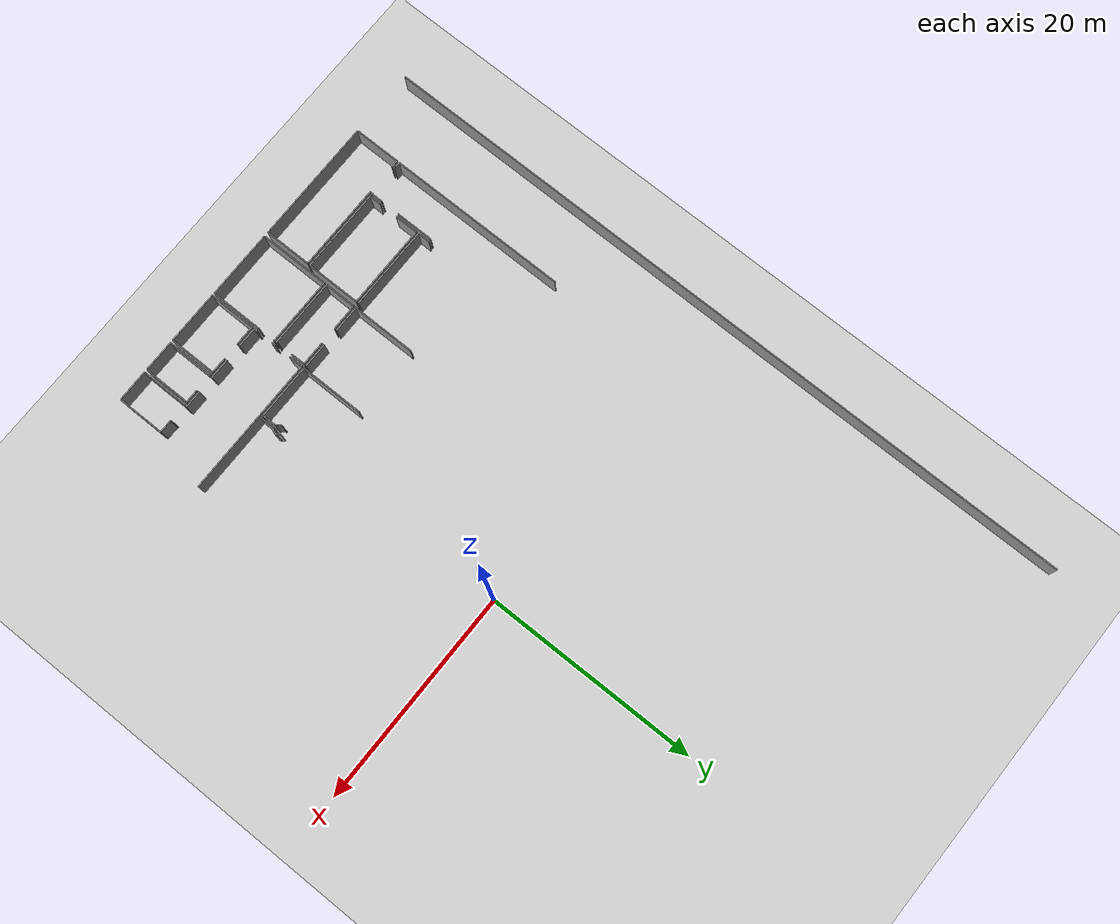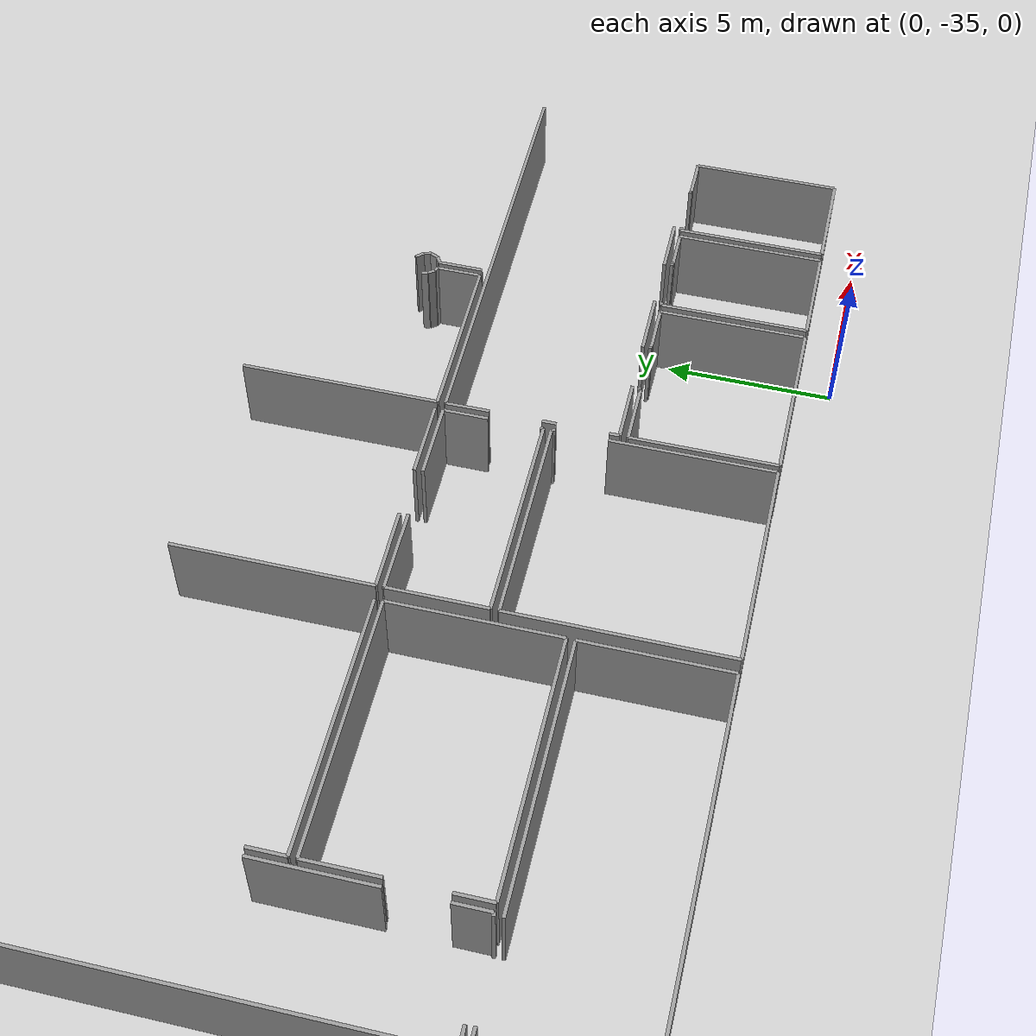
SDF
<sdf version="1.6">
 <world name="default">
  <model name="ground_plane">
   <static>1</static>
   <link name="link">
    <collision name="collision">
     <geometry><plane><normal>0 0 1</normal><size>100 100</size></plane></geometry>
     <surface><friction><ode><mu>100</mu><mu2>50</mu2></ode></friction></surface>
    </collision>
    <visual name="visual">
     <cast_shadows>0</cast_shadows>
     <geometry><plane><normal>0 0 1</normal><size>100 100</size></plane></geometry>
     <material>
      <script><uri>file://media/materials/scripts/gazebo.material</uri><name>Gazebo/Grey</name></script>
     </material>
    </visual>
   </link>
  </model>
  <model name="50041192">
   <static>1</static>
   <link name="Wall_153">
    <collision name="Wall_153_Collision">
     <geometry><box><size>1.3398904604 0.1 2.5</size></box></geometry>
     <pose>0.669945230198 0 1.25 0 0 0</pose>
    </collision>
    <visual name="Wall_153_Visual">
     <pose>0.669945230198 0 1.25 0 0 0</pose>
     <geometry><box><size>1.3398904604 0.1 2.5</size></box></geometry>
     <material>
      <script><uri>file://media/materials/scripts/gazebo.material</uri><name>Gazebo/Grey</name></script>
      <ambient>1 1 1 1</ambient>
     </material>
    </visual>
    <pose>30.2012885517 -57.8573570711 0 0 0 1.57079632679</pose>
   </link>
   <link name="Wall_154">
    <collision name="Wall_154_Collision">
     <geometry><box><size>0.224713173399 0.1 2.5</size></box></geometry>
     <pose>0.1123565867 0 1.25 0 0 0</pose>
    </collision>
    <visual name="Wall_154_Visual">
     <pose>0.1123565867 0 1.25 0 0 0</pose>
     <geometry><box><size>0.224713173399 0.1 2.5</size></box></geometry>
     <material>
      <script><uri>file://media/materials/scripts/gazebo.material</uri><name>Gazebo/Grey</name></script>
      <ambient>1 1 1 1</ambient>
     </material>
    </visual>
    <pose>30.2012885517 -56.5174666108 0 0 0 0.503363489354</pose>
   </link>
   <link name="Wall_155">
    <collision name="Wall_155_Collision">
     <geometry><box><size>0.277951815044 0.1 2.5</size></box></geometry>
     <pose>0.138975907522 0 1.25 0 0 0</pose>
    </collision>
    <visual name="Wall_155_Visual">
     <pose>0.138975907522 0 1.25 0 0 0</pose>
     <geometry><box><size>0.277951815044 0.1 2.5</size></box></geometry>
     <material>
      <script><uri>file://media/materials/scripts/gazebo.material</uri><name>Gazebo/Grey</name></script>
      <ambient>1 1 1 1</ambient>
     </material>
    </visual>
    <pose>30.3981294397 -56.4090706924 0 0 0 1.14170941905</pose>
   </link>
   <link name="Wall_156">
    <collision name="Wall_156_Collision">
     <geometry><box><size>0.219416869989 0.1 2.5</size></box></geometry>
     <pose>0.109708434995 0 1.25 0 0 0</pose>
    </collision>
    <visual name="Wall_156_Visual">
     <pose>0.109708434995 0 1.25 0 0 0</pose>
     <geometry><box><size>0.219416869989 0.1 2.5</size></box></geometry>
     <material>
      <script><uri>file://media/materials/scripts/gazebo.material</uri><name>Gazebo/Grey</name></script>
      <ambient>1 1 1 1</ambient>
     </material>
    </visual>
    <pose>30.5137686961 -56.1563163178 0 0 0 1.87185007505</pose>
   </link>
   <link name="Wall_157">
    <collision name="Wall_157_Collision">
     <geometry><box><size>0.273640742345 0.1 2.5</size></box></geometry>
     <pose>0.136820371172 0 1.25 0 0 0</pose>
    </collision>
    <visual name="Wall_157_Visual">
     <pose>0.136820371172 0 1.25 0 0 0</pose>
     <geometry><box><size>0.273640742345 0.1 2.5</size></box></geometry>
     <material>
      <script><uri>file://media/materials/scripts/gazebo.material</uri><name>Gazebo/Grey</name></script>
      <ambient>1 1 1 1</ambient>
     </material>
    </visual>
    <pose>30.4487057299 -55.9467678192 0 0 0 2.30954853521</pose>
   </link>
   <link name="Wall_164">
    <collision name="Wall_164_Collision">
     <geometry><box><size>5.90598909687 0.1 2.5</size></box></geometry>
     <pose>2.95299454844 0 1.25 0 0 0</pose>
    </collision>
    <visual name="Wall_164_Visual">
     <pose>2.95299454844 0 1.25 0 0 0</pose>
     <geometry><box><size>5.90598909687 0.1 2.5</size></box></geometry>
     <material>
      <script><uri>file://media/materials/scripts/gazebo.material</uri><name>Gazebo/Grey</name></script>
      <ambient>1 1 1 1</ambient>
     </material>
    </visual>
    <pose>24.8673960835 -57.8551967773 0 0 0 1.57079632679</pose>
   </link>
   <link name="Wall_171">
    <collision name="Wall_171_Collision">
     <geometry><box><size>0.198476198962 0.1 2.5</size></box></geometry>
     <pose>0.0992380994808 0 1.25 0 0 0</pose>
    </collision>
    <visual name="Wall_171_Visual">
     <pose>0.0992380994808 0 1.25 0 0 0</pose>
     <geometry><box><size>0.198476198962 0.1 2.5</size></box></geometry>
     <material>
      <script><uri>file://media/materials/scripts/gazebo.material</uri><name>Gazebo/Grey</name></script>
      <ambient>1 1 1 1</ambient>
     </material>
    </visual>
    <pose>29.6693479725 -56.0837558614 0 0 0 -1.4327022238</pose>
   </link>
   <link name="Wall_172">
    <collision name="Wall_172_Collision">
     <geometry><box><size>0.220738365318 0.1 2.5</size></box></geometry>
     <pose>0.110369182659 0 1.25 0 0 0</pose>
    </collision>
    <visual name="Wall_172_Visual">
     <pose>0.110369182659 0 1.25 0 0 0</pose>
     <geometry><box><size>0.220738365318 0.1 2.5</size></box></geometry>
     <material>
      <script><uri>file://media/materials/scripts/gazebo.material</uri><name>Gazebo/Grey</name></script>
      <ambient>1 1 1 1</ambient>
     </material>
    </visual>
    <pose>29.6966693353 -56.2803425972 0 0 0 -0.935354916826</pose>
   </link>
   <link name="Wall_173">
    <collision name="Wall_173_Collision">
     <geometry><box><size>0.1601344999 0.1 2.5</size></box></geometry>
     <pose>0.0800672499501 0 1.25 0 0 0</pose>
    </collision>
    <visual name="Wall_173_Visual">
     <pose>0.0800672499501 0 1.25 0 0 0</pose>
     <geometry><box><size>0.1601344999 0.1 2.5</size></box></geometry>
     <material>
      <script><uri>file://media/materials/scripts/gazebo.material</uri><name>Gazebo/Grey</name></script>
      <ambient>1 1 1 1</ambient>
     </material>
    </visual>
    <pose>29.8276848004 -56.4579949932 0 0 0 -0.440222714576</pose>
   </link>
   <link name="Wall_174">
    <collision name="Wall_174_Collision">
     <geometry><box><size>1.32209980557 0.1 2.5</size></box></geometry>
     <pose>0.661049902787 0 1.25 0 0 0</pose>
    </collision>
    <visual name="Wall_174_Visual">
     <pose>0.661049902787 0 1.25 0 0 0</pose>
     <geometry><box><size>1.32209980557 0.1 2.5</size></box></geometry>
     <material>
      <script><uri>file://media/materials/scripts/gazebo.material</uri><name>Gazebo/Grey</name></script>
      <ambient>1 1 1 1</ambient>
     </material>
    </visual>
    <pose>29.9725515611 -56.5262348621 0 0 0 -1.57079632679</pose>
   </link>
   <link name="Wall_175">
    <collision name="Wall_175_Collision">
     <geometry><box><size>5.10516008948 0.1 2.5</size></box></geometry>
     <pose>2.55258004474 0 1.25 0 0 0</pose>
    </collision>
    <visual name="Wall_175_Visual">
     <pose>2.55258004474 0 1.25 0 0 0</pose>
     <geometry><box><size>5.10516008948 0.1 2.5</size></box></geometry>
     <material>
      <script><uri>file://media/materials/scripts/gazebo.material</uri><name>Gazebo/Grey</name></script>
      <ambient>1 1 1 1</ambient>
     </material>
    </visual>
    <pose>29.9725515611 -57.8483346676 0 0 0 -3.14024850146</pose>
   </link>
   <link name="Wall_263">
    <collision name="Wall_263_Collision">
     <geometry><box><size>4.40064554662 0.1 2.5</size></box></geometry>
     <pose>2.20032277331 0 1.25 0 0 0</pose>
    </collision>
    <visual name="Wall_263_Visual">
     <pose>2.20032277331 0 1.25 0 0 0</pose>
     <geometry><box><size>4.40064554662 0.1 2.5</size></box></geometry>
     <material>
      <script><uri>file://media/materials/scripts/gazebo.material</uri><name>Gazebo/Grey</name></script>
      <ambient>1 1 1 1</ambient>
     </material>
    </visual>
    <pose>33.2718284981 -67.8558321579 0 0 0 1.57079632679</pose>
   </link>
   <link name="Wall_264">
    <collision name="Wall_264_Collision">
     <geometry><box><size>0.119324463421 0.1 2.5</size></box></geometry>
     <pose>0.0596622317106 0 1.25 0 0 0</pose>
    </collision>
    <visual name="Wall_264_Visual">
     <pose>0.0596622317106 0 1.25 0 0 0</pose>
     <geometry><box><size>0.119324463421 0.1 2.5</size></box></geometry>
     <material>
      <script><uri>file://media/materials/scripts/gazebo.material</uri><name>Gazebo/Grey</name></script>
      <ambient>1 1 1 1</ambient>
     </material>
    </visual>
    <pose>33.2718284981 -63.4551866113 0 0 0 0.0</pose>
   </link>
   <link name="Wall_265">
    <collision name="Wall_265_Collision">
     <geometry><box><size>0.0926384811864 0.1 2.5</size></box></geometry>
     <pose>0.0463192405932 0 1.25 0 0 0</pose>
    </collision>
    <visual name="Wall_265_Visual">
     <pose>0.0463192405932 0 1.25 0 0 0</pose>
     <geometry><box><size>0.0926384811864 0.1 2.5</size></box></geometry>
     <material>
      <script><uri>file://media/materials/scripts/gazebo.material</uri><name>Gazebo/Grey</name></script>
      <ambient>1 1 1 1</ambient>
     </material>
    </visual>
    <pose>34.9311882887 -63.4551866113 0 0 0 0.0</pose>
   </link>
   <link name="Wall_266">
    <collision name="Wall_266_Collision">
     <geometry><box><size>0.0184260353526 0.1 2.5</size></box></geometry>
     <pose>0.00921301767628 0 1.25 0 0 0</pose>
    </collision>
    <visual name="Wall_266_Visual">
     <pose>0.00921301767628 0 1.25 0 0 0</pose>
     <geometry><box><size>0.0184260353526 0.1 2.5</size></box></geometry>
     <material>
      <script><uri>file://media/materials/scripts/gazebo.material</uri><name>Gazebo/Grey</name></script>
      <ambient>1 1 1 1</ambient>
     </material>
    </visual>
    <pose>35.0238267699 -63.4551866113 0 0 0 -1.57079632679</pose>
   </link>
   <link name="Wall_267">
    <collision name="Wall_267_Collision">
     <geometry><box><size>1.18523883954 0.1 2.5</size></box></geometry>
     <pose>0.59261941977 0 1.25 0 0 0</pose>
    </collision>
    <visual name="Wall_267_Visual">
     <pose>0.59261941977 0 1.25 0 0 0</pose>
     <geometry><box><size>1.18523883954 0.1 2.5</size></box></geometry>
     <material>
      <script><uri>file://media/materials/scripts/gazebo.material</uri><name>Gazebo/Grey</name></script>
      <ambient>1 1 1 1</ambient>
     </material>
    </visual>
    <pose>35.0238267699 -63.4736126466 0 0 0 0.0</pose>
   </link>
   <link name="Wall_268">
    <collision name="Wall_268_Collision">
     <geometry><box><size>4.37268880332 0.1 2.5</size></box></geometry>
     <pose>2.18634440166 0 1.25 0 0 0</pose>
    </collision>
    <visual name="Wall_268_Visual">
     <pose>2.18634440166 0 1.25 0 0 0</pose>
     <geometry><box><size>4.37268880332 0.1 2.5</size></box></geometry>
     <material>
      <script><uri>file://media/materials/scripts/gazebo.material</uri><name>Gazebo/Grey</name></script>
      <ambient>1 1 1 1</ambient>
     </material>
    </visual>
    <pose>36.2090656094 -63.4736126466 0 0 0 -1.57079632679</pose>
   </link>
   <link name="Wall_269">
    <collision name="Wall_269_Collision">
     <geometry><box><size>2.93725257382 0.1 2.5</size></box></geometry>
     <pose>1.46862628691 0 1.25 0 0 0</pose>
    </collision>
    <visual name="Wall_269_Visual">
     <pose>1.46862628691 0 1.25 0 0 0</pose>
     <geometry><box><size>2.93725257382 0.1 2.5</size></box></geometry>
     <material>
      <script><uri>file://media/materials/scripts/gazebo.material</uri><name>Gazebo/Grey</name></script>
      <ambient>1 1 1 1</ambient>
     </material>
    </visual>
    <pose>36.2090656094 -67.8463014499 0 0 0 -3.13834787827</pose>
   </link>
   <link name="Wall_270">
    <collision name="Wall_270_Collision">
     <geometry><box><size>4.40140800325 0.1 2.5</size></box></geometry>
     <pose>2.20070400163 0 1.25 0 0 0</pose>
    </collision>
    <visual name="Wall_270_Visual">
     <pose>2.20070400163 0 1.25 0 0 0</pose>
     <geometry><box><size>4.40140800325 0.1 2.5</size></box></geometry>
     <material>
      <script><uri>file://media/materials/scripts/gazebo.material</uri><name>Gazebo/Grey</name></script>
      <ambient>1 1 1 1</ambient>
     </material>
    </visual>
    <pose>30.0702730866 -67.8545613968 0 0 0 1.57079632679</pose>
   </link>
   <link name="Wall_271">
    <collision name="Wall_271_Collision">
     <geometry><box><size>0.115258028033 0.1 2.5</size></box></geometry>
     <pose>0.0576290140165 0 1.25 0 0 0</pose>
    </collision>
    <visual name="Wall_271_Visual">
     <pose>0.0576290140165 0 1.25 0 0 0</pose>
     <geometry><box><size>0.115258028033 0.1 2.5</size></box></geometry>
     <material>
      <script><uri>file://media/materials/scripts/gazebo.material</uri><name>Gazebo/Grey</name></script>
      <ambient>1 1 1 1</ambient>
     </material>
    </visual>
    <pose>30.0702730866 -63.4531533936 0 0 0 0.0</pose>
   </link>
   <link name="Wall_272">
    <collision name="Wall_272_Collision">
     <geometry><box><size>0.0900969590688 0.1 2.5</size></box></geometry>
     <pose>0.0450484795344 0 1.25 0 0 0</pose>
    </collision>
    <visual name="Wall_272_Visual">
     <pose>0.0450484795344 0 1.25 0 0 0</pose>
     <geometry><box><size>0.0900969590688 0.1 2.5</size></box></geometry>
     <material>
      <script><uri>file://media/materials/scripts/gazebo.material</uri><name>Gazebo/Grey</name></script>
      <ambient>1 1 1 1</ambient>
     </material>
    </visual>
    <pose>31.7370032913 -63.4531533936 0 0 0 0.0</pose>
   </link>
   <link name="Wall_273">
    <collision name="Wall_273_Collision">
     <geometry><box><size>0.0299899609876 0.1 2.5</size></box></geometry>
     <pose>0.0149949804938 0 1.25 0 0 0</pose>
    </collision>
    <visual name="Wall_273_Visual">
     <pose>0.0149949804938 0 1.25 0 0 0</pose>
     <geometry><box><size>0.0299899609876 0.1 2.5</size></box></geometry>
     <material>
      <script><uri>file://media/materials/scripts/gazebo.material</uri><name>Gazebo/Grey</name></script>
      <ambient>1 1 1 1</ambient>
     </material>
    </visual>
    <pose>31.8271002503 -63.4531533936 0 0 0 -1.57079632679</pose>
   </link>
   <link name="Wall_274">
    <collision name="Wall_274_Collision">
     <geometry><box><size>1.18269731742 0.1 2.5</size></box></geometry>
     <pose>0.591348658712 0 1.25 0 0 0</pose>
    </collision>
    <visual name="Wall_274_Visual">
     <pose>0.591348658712 0 1.25 0 0 0</pose>
     <geometry><box><size>1.18269731742 0.1 2.5</size></box></geometry>
     <material>
      <script><uri>file://media/materials/scripts/gazebo.material</uri><name>Gazebo/Grey</name></script>
      <ambient>1 1 1 1</ambient>
     </material>
    </visual>
    <pose>31.8271002503 -63.4831433546 0 0 0 0.0</pose>
   </link>
   <link name="Wall_275">
    <collision name="Wall_275_Collision">
     <geometry><box><size>4.36963897678 0.1 2.5</size></box></geometry>
     <pose>2.18481948839 0 1.25 0 0 0</pose>
    </collision>
    <visual name="Wall_275_Visual">
     <pose>2.18481948839 0 1.25 0 0 0</pose>
     <geometry><box><size>4.36963897678 0.1 2.5</size></box></geometry>
     <material>
      <script><uri>file://media/materials/scripts/gazebo.material</uri><name>Gazebo/Grey</name></script>
      <ambient>1 1 1 1</ambient>
     </material>
    </visual>
    <pose>33.0097975678 -63.4831433546 0 0 0 -1.57079632679</pose>
   </link>
   <link name="Wall_276">
    <collision name="Wall_276_Collision">
     <geometry><box><size>2.93952501958 0.1 2.5</size></box></geometry>
     <pose>1.46976250979 0 1.25 0 0 0</pose>
    </collision>
    <visual name="Wall_276_Visual">
     <pose>1.46976250979 0 1.25 0 0 0</pose>
     <geometry><box><size>2.93952501958 0.1 2.5</size></box></geometry>
     <material>
      <script><uri>file://media/materials/scripts/gazebo.material</uri><name>Gazebo/Grey</name></script>
      <ambient>1 1 1 1</ambient>
     </material>
    </visual>
    <pose>33.0097975678 -67.8527823313 0 0 0 -3.14098743146</pose>
   </link>
   <link name="Wall_277">
    <collision name="Wall_277_Collision">
     <geometry><box><size>4.37141804227 0.1 2.5</size></box></geometry>
     <pose>2.18570902113 0 1.25 0 0 0</pose>
    </collision>
    <visual name="Wall_277_Visual">
     <pose>2.18570902113 0 1.25 0 0 0</pose>
     <geometry><box><size>4.37141804227 0.1 2.5</size></box></geometry>
     <material>
      <script><uri>file://media/materials/scripts/gazebo.material</uri><name>Gazebo/Grey</name></script>
      <ambient>1 1 1 1</ambient>
     </material>
    </visual>
    <pose>24.8693022251 -67.8558321579 0 0 0 1.57079632679</pose>
   </link>
   <link name="Wall_278">
    <collision name="Wall_278_Collision">
     <geometry><box><size>1.79876227873 0.1 2.5</size></box></geometry>
     <pose>0.899381139364 0 1.25 0 0 0</pose>
    </collision>
    <visual name="Wall_278_Visual">
     <pose>0.899381139364 0 1.25 0 0 0</pose>
     <geometry><box><size>1.79876227873 0.1 2.5</size></box></geometry>
     <material>
      <script><uri>file://media/materials/scripts/gazebo.material</uri><name>Gazebo/Grey</name></script>
      <ambient>1 1 1 1</ambient>
     </material>
    </visual>
    <pose>24.8693022251 -63.4844141156 0 0 0 0.0</pose>
   </link>
   <link name="Wall_279">
    <collision name="Wall_279_Collision">
     <geometry><box><size>0.0329284082025 0.1 2.5</size></box></geometry>
     <pose>0.0164642041013 0 1.25 0 0 0</pose>
    </collision>
    <visual name="Wall_279_Visual">
     <pose>0.0164642041013 0 1.25 0 0 0</pose>
     <geometry><box><size>0.0329284082025 0.1 2.5</size></box></geometry>
     <material>
      <script><uri>file://media/materials/scripts/gazebo.material</uri><name>Gazebo/Grey</name></script>
      <ambient>1 1 1 1</ambient>
     </material>
    </visual>
    <pose>26.6680645038 -63.4844141156 0 0 0 1.35296455109</pose>
   </link>
   <link name="Wall_280">
    <collision name="Wall_280_Collision">
     <geometry><box><size>0.0879366652688 0.1 2.5</size></box></geometry>
     <pose>0.0439683326344 0 1.25 0 0 0</pose>
    </collision>
    <visual name="Wall_280_Visual">
     <pose>0.0439683326344 0 1.25 0 0 0</pose>
     <geometry><box><size>0.0879366652688 0.1 2.5</size></box></geometry>
     <material>
      <script><uri>file://media/materials/scripts/gazebo.material</uri><name>Gazebo/Grey</name></script>
      <ambient>1 1 1 1</ambient>
     </material>
    </visual>
    <pose>26.6751807658 -63.4522638608 0 0 0 0.0</pose>
   </link>
   <link name="Wall_281">
    <collision name="Wall_281_Collision">
     <geometry><box><size>0.0781518051161 0.1 2.5</size></box></geometry>
     <pose>0.039075902558 0 1.25 0 0 0</pose>
    </collision>
    <visual name="Wall_281_Visual">
     <pose>0.039075902558 0 1.25 0 0 0</pose>
     <geometry><box><size>0.0781518051161 0.1 2.5</size></box></geometry>
     <material>
      <script><uri>file://media/materials/scripts/gazebo.material</uri><name>Gazebo/Grey</name></script>
      <ambient>1 1 1 1</ambient>
     </material>
    </visual>
    <pose>28.3062025847 -63.4522638608 0 0 0 0.0</pose>
   </link>
   <link name="Wall_282">
    <collision name="Wall_282_Collision">
     <geometry><box><size>0.0235090795878 0.1 2.5</size></box></geometry>
     <pose>0.0117545397939 0 1.25 0 0 0</pose>
    </collision>
    <visual name="Wall_282_Visual">
     <pose>0.0117545397939 0 1.25 0 0 0</pose>
     <geometry><box><size>0.0235090795878 0.1 2.5</size></box></geometry>
     <material>
      <script><uri>file://media/materials/scripts/gazebo.material</uri><name>Gazebo/Grey</name></script>
      <ambient>1 1 1 1</ambient>
     </material>
    </visual>
    <pose>28.3843543898 -63.4522638608 0 0 0 -1.57079632679</pose>
   </link>
   <link name="Wall_283">
    <collision name="Wall_283_Collision">
     <geometry><box><size>1.41753396109 0.1 2.5</size></box></geometry>
     <pose>0.708766980545 0 1.25 0 0 0</pose>
    </collision>
    <visual name="Wall_283_Visual">
     <pose>0.708766980545 0 1.25 0 0 0</pose>
     <geometry><box><size>1.41753396109 0.1 2.5</size></box></geometry>
     <material>
      <script><uri>file://media/materials/scripts/gazebo.material</uri><name>Gazebo/Grey</name></script>
      <ambient>1 1 1 1</ambient>
     </material>
    </visual>
    <pose>28.3843543898 -63.4757729404 0 0 0 0.0</pose>
   </link>
   <link name="Wall_284">
    <collision name="Wall_284_Collision">
     <geometry><box><size>4.38005921747 0.1 2.5</size></box></geometry>
     <pose>2.19002960873 0 1.25 0 0 0</pose>
    </collision>
    <visual name="Wall_284_Visual">
     <pose>2.19002960873 0 1.25 0 0 0</pose>
     <geometry><box><size>4.38005921747 0.1 2.5</size></box></geometry>
     <material>
      <script><uri>file://media/materials/scripts/gazebo.material</uri><name>Gazebo/Grey</name></script>
      <ambient>1 1 1 1</ambient>
     </material>
    </visual>
    <pose>29.8018883509 -63.4757729404 0 0 0 -1.57079632679</pose>
   </link>
   <link name="Wall_285">
    <collision name="Wall_285_Collision">
     <geometry><box><size>4.93258612583 0.1 2.5</size></box></geometry>
     <pose>2.46629306292 0 1.25 0 0 0</pose>
    </collision>
    <visual name="Wall_285_Visual">
     <pose>2.46629306292 0 1.25 0 0 0</pose>
     <geometry><box><size>4.93258612583 0.1 2.5</size></box></geometry>
     <material>
      <script><uri>file://media/materials/scripts/gazebo.material</uri><name>Gazebo/Grey</name></script>
      <ambient>1 1 1 1</ambient>
     </material>
    </visual>
    <pose>29.8018883509 -67.8558321579 0 0 0 3.14159265359</pose>
   </link>
   <link name="Wall_286">
    <collision name="Wall_286_Collision">
     <geometry><box><size>6.55852490056 0.1 2.5</size></box></geometry>
     <pose>3.27926245028 0 1.25 0 0 0</pose>
    </collision>
    <visual name="Wall_286_Visual">
     <pose>3.27926245028 0 1.25 0 0 0</pose>
     <geometry><box><size>6.55852490056 0.1 2.5</size></box></geometry>
     <material>
      <script><uri>file://media/materials/scripts/gazebo.material</uri><name>Gazebo/Grey</name></script>
      <ambient>1 1 1 1</ambient>
     </material>
    </visual>
    <pose>18.2784999936 -67.8550697012 0 0 0 1.57079632679</pose>
   </link>
   <link name="Wall_287">
    <collision name="Wall_287_Collision">
     <geometry><box><size>6.35482190284 0.1 2.5</size></box></geometry>
     <pose>3.17741095142 0 1.25 0 0 0</pose>
    </collision>
    <visual name="Wall_287_Visual">
     <pose>3.17741095142 0 1.25 0 0 0</pose>
     <geometry><box><size>6.35482190284 0.1 2.5</size></box></geometry>
     <material>
      <script><uri>file://media/materials/scripts/gazebo.material</uri><name>Gazebo/Grey</name></script>
      <ambient>1 1 1 1</ambient>
     </material>
    </visual>
    <pose>18.2784999936 -61.2965448007 0 0 0 0.0</pose>
   </link>
   <link name="Wall_288">
    <collision name="Wall_288_Collision">
     <geometry><box><size>0.114622647504 0.1 2.5</size></box></geometry>
     <pose>0.0573113237518 0 1.25 0 0 0</pose>
    </collision>
    <visual name="Wall_288_Visual">
     <pose>0.0573113237518 0 1.25 0 0 0</pose>
     <geometry><box><size>0.114622647504 0.1 2.5</size></box></geometry>
     <material>
      <script><uri>file://media/materials/scripts/gazebo.material</uri><name>Gazebo/Grey</name></script>
      <ambient>1 1 1 1</ambient>
     </material>
    </visual>
    <pose>24.6333218965 -61.2965448007 0 0 0 -1.57079632679</pose>
   </link>
   <link name="Wall_289">
    <collision name="Wall_289_Collision">
     <geometry><box><size>4.88938024983 0.1 2.5</size></box></geometry>
     <pose>2.44469012492 0 1.25 0 0 0</pose>
    </collision>
    <visual name="Wall_289_Visual">
     <pose>2.44469012492 0 1.25 0 0 0</pose>
     <geometry><box><size>4.88938024983 0.1 2.5</size></box></geometry>
     <material>
      <script><uri>file://media/materials/scripts/gazebo.material</uri><name>Gazebo/Grey</name></script>
      <ambient>1 1 1 1</ambient>
     </material>
    </visual>
    <pose>24.6333218965 -62.9573024284 0 0 0 -1.57079632679</pose>
   </link>
   <link name="Wall_290">
    <collision name="Wall_290_Collision">
     <geometry><box><size>6.35482743738 0.1 2.5</size></box></geometry>
     <pose>3.17741371869 0 1.25 0 0 0</pose>
    </collision>
    <visual name="Wall_290_Visual">
     <pose>3.17741371869 0 1.25 0 0 0</pose>
     <geometry><box><size>6.35482743738 0.1 2.5</size></box></geometry>
     <material>
      <script><uri>file://media/materials/scripts/gazebo.material</uri><name>Gazebo/Grey</name></script>
      <ambient>1 1 1 1</ambient>
     </material>
    </visual>
    <pose>24.6333218965 -67.8466826783 0 0 0 -3.14027286552</pose>
   </link>
   <link name="Wall_291">
    <collision name="Wall_291_Collision">
     <geometry><box><size>2.96049203868 0.1 2.5</size></box></geometry>
     <pose>1.48024601934 0 1.25 0 0 0</pose>
    </collision>
    <visual name="Wall_291_Visual">
     <pose>1.48024601934 0 1.25 0 0 0</pose>
     <geometry><box><size>2.96049203868 0.1 2.5</size></box></geometry>
     <material>
      <script><uri>file://media/materials/scripts/gazebo.material</uri><name>Gazebo/Grey</name></script>
      <ambient>1 1 1 1</ambient>
     </material>
    </visual>
    <pose>18.288539006 -61.053321134 0 0 0 1.57079632679</pose>
   </link>
   <link name="Wall_292">
    <collision name="Wall_292_Collision">
     <geometry><box><size>2.49081875135 0.1 2.5</size></box></geometry>
     <pose>1.24540937568 0 1.25 0 0 0</pose>
    </collision>
    <visual name="Wall_292_Visual">
     <pose>1.24540937568 0 1.25 0 0 0</pose>
     <geometry><box><size>2.49081875135 0.1 2.5</size></box></geometry>
     <material>
      <script><uri>file://media/materials/scripts/gazebo.material</uri><name>Gazebo/Grey</name></script>
      <ambient>1 1 1 1</ambient>
     </material>
    </visual>
    <pose>18.288539006 -58.0928290953 0 0 0 0.0</pose>
   </link>
   <link name="Wall_293">
    <collision name="Wall_293_Collision">
     <geometry><box><size>2.27707674126 0.1 2.5</size></box></geometry>
     <pose>1.13853837063 0 1.25 0 0 0</pose>
    </collision>
    <visual name="Wall_293_Visual">
     <pose>1.13853837063 0 1.25 0 0 0</pose>
     <geometry><box><size>2.27707674126 0.1 2.5</size></box></geometry>
     <material>
      <script><uri>file://media/materials/scripts/gazebo.material</uri><name>Gazebo/Grey</name></script>
      <ambient>1 1 1 1</ambient>
     </material>
    </visual>
    <pose>22.3294320969 -58.0928290953 0 0 0 0.0</pose>
   </link>
   <link name="Wall_294">
    <collision name="Wall_294_Collision">
     <geometry><box><size>1.33544279669 0.1 2.5</size></box></geometry>
     <pose>0.667721398345 0 1.25 0 0 0</pose>
    </collision>
    <visual name="Wall_294_Visual">
     <pose>0.667721398345 0 1.25 0 0 0</pose>
     <geometry><box><size>1.33544279669 0.1 2.5</size></box></geometry>
     <material>
      <script><uri>file://media/materials/scripts/gazebo.material</uri><name>Gazebo/Grey</name></script>
      <ambient>1 1 1 1</ambient>
     </material>
    </visual>
    <pose>24.6065088381 -58.0928290953 0 0 0 -1.57079632679</pose>
   </link>
   <link name="Wall_295">
    <collision name="Wall_295_Collision">
     <geometry><box><size>0.0926384811864 0.1 2.5</size></box></geometry>
     <pose>0.0463192405932 0 1.25 0 0 0</pose>
    </collision>
    <visual name="Wall_295_Visual">
     <pose>0.0463192405932 0 1.25 0 0 0</pose>
     <geometry><box><size>0.0926384811864 0.1 2.5</size></box></geometry>
     <material>
      <script><uri>file://media/materials/scripts/gazebo.material</uri><name>Gazebo/Grey</name></script>
      <ambient>1 1 1 1</ambient>
     </material>
    </visual>
    <pose>24.6065088381 -60.9702133608 0 0 0 -1.57079632679</pose>
   </link>
   <link name="Wall_296">
    <collision name="Wall_296_Collision">
     <geometry><box><size>6.3179770207 0.1 2.5</size></box></geometry>
     <pose>3.15898851035 0 1.25 0 0 0</pose>
    </collision>
    <visual name="Wall_296_Visual">
     <pose>3.15898851035 0 1.25 0 0 0</pose>
     <geometry><box><size>6.3179770207 0.1 2.5</size></box></geometry>
     <material>
      <script><uri>file://media/materials/scripts/gazebo.material</uri><name>Gazebo/Grey</name></script>
      <ambient>1 1 1 1</ambient>
     </material>
    </visual>
    <pose>24.6065088381 -61.062851842 0 0 0 3.14008414675</pose>
   </link>
   <link name="Wall_297">
    <collision name="Wall_297_Collision">
     <geometry><box><size>5.91005553226 0.1 2.5</size></box></geometry>
     <pose>2.95502776613 0 1.25 0 0 0</pose>
    </collision>
    <visual name="Wall_297_Visual">
     <pose>2.95502776613 0 1.25 0 0 0</pose>
     <geometry><box><size>5.91005553226 0.1 2.5</size></box></geometry>
     <material>
      <script><uri>file://media/materials/scripts/gazebo.material</uri><name>Gazebo/Grey</name></script>
      <ambient>1 1 1 1</ambient>
     </material>
    </visual>
    <pose>18.28612456 -57.8648545614 0 0 0 1.57079632679</pose>
   </link>
   <link name="Wall_300">
    <collision name="Wall_300_Collision">
     <geometry><box><size>2.30960822437 0.1 2.5</size></box></geometry>
     <pose>1.15480411218 0 1.25 0 0 0</pose>
    </collision>
    <visual name="Wall_300_Visual">
     <pose>1.15480411218 0 1.25 0 0 0</pose>
     <geometry><box><size>2.30960822437 0.1 2.5</size></box></geometry>
     <material>
      <script><uri>file://media/materials/scripts/gazebo.material</uri><name>Gazebo/Grey</name></script>
      <ambient>1 1 1 1</ambient>
     </material>
    </visual>
    <pose>24.6301449938 -57.8476992871 0 0 0 3.14159265359</pose>
   </link>
   <link name="Wall_301">
    <collision name="Wall_301_Collision">
     <geometry><box><size>2.4677505307 0.1 2.5</size></box></geometry>
     <pose>1.23387526535 0 1.25 0 0 0</pose>
    </collision>
    <visual name="Wall_301_Visual">
     <pose>1.23387526535 0 1.25 0 0 0</pose>
     <geometry><box><size>2.4677505307 0.1 2.5</size></box></geometry>
     <material>
      <script><uri>file://media/materials/scripts/gazebo.material</uri><name>Gazebo/Grey</name></script>
      <ambient>1 1 1 1</ambient>
     </material>
    </visual>
    <pose>20.7538154601 -57.8476992871 0 0 0 -3.13464081131</pose>
   </link>
   <link name="Wall_302">
    <collision name="Wall_302_Collision">
     <geometry><box><size>12.8445986301 0.1 2.5</size></box></geometry>
     <pose>6.42229931506 0 1.25 0 0 0</pose>
    </collision>
    <visual name="Wall_302_Visual">
     <pose>6.42229931506 0 1.25 0 0 0</pose>
     <geometry><box><size>12.8445986301 0.1 2.5</size></box></geometry>
     <material>
      <script><uri>file://media/materials/scripts/gazebo.material</uri><name>Gazebo/Grey</name></script>
      <ambient>1 1 1 1</ambient>
     </material>
    </visual>
    <pose>24.8675231596 -58.0940998564 0 0 0 0.0</pose>
   </link>
   <link name="Wall_313">
    <collision name="Wall_313_Collision">
     <geometry><box><size>1.65783487731 0.1 2.5</size></box></geometry>
     <pose>0.828917438654 0 1.25 0 0 0</pose>
    </collision>
    <visual name="Wall_313_Visual">
     <pose>0.828917438654 0 1.25 0 0 0</pose>
     <geometry><box><size>1.65783487731 0.1 2.5</size></box></geometry>
     <material>
      <script><uri>file://media/materials/scripts/gazebo.material</uri><name>Gazebo/Grey</name></script>
      <ambient>1 1 1 1</ambient>
     </material>
    </visual>
    <pose>33.3684063386 -63.2336929587 0 0 0 3.14159265359</pose>
   </link>
   <link name="Wall_314">
    <collision name="Wall_314_Collision">
     <geometry><box><size>1.87627870332 0.1 2.5</size></box></geometry>
     <pose>0.938139351658 0 1.25 0 0 0</pose>
    </collision>
    <visual name="Wall_314_Visual">
     <pose>0.938139351658 0 1.25 0 0 0</pose>
     <geometry><box><size>1.87627870332 0.1 2.5</size></box></geometry>
     <material>
      <script><uri>file://media/materials/scripts/gazebo.material</uri><name>Gazebo/Grey</name></script>
      <ambient>1 1 1 1</ambient>
     </material>
    </visual>
    <pose>30.1761274827 -63.2336929587 0 0 0 3.14159265359</pose>
   </link>
   <link name="Wall_315">
    <collision name="Wall_315_Collision">
     <geometry><box><size>1.88263250861 0.1 2.5</size></box></geometry>
     <pose>0.941316254305 0 1.25 0 0 0</pose>
    </collision>
    <visual name="Wall_315_Visual">
     <pose>0.941316254305 0 1.25 0 0 0</pose>
     <geometry><box><size>1.88263250861 0.1 2.5</size></box></geometry>
     <material>
      <script><uri>file://media/materials/scripts/gazebo.material</uri><name>Gazebo/Grey</name></script>
      <ambient>1 1 1 1</ambient>
     </material>
    </visual>
    <pose>26.758288539 -63.2336929587 0 0 0 3.14159265359</pose>
   </link>
   <link name="Wall_316">
    <collision name="Wall_316_Collision">
     <geometry><box><size>0.299518381559 0.1 2.5</size></box></geometry>
     <pose>0.149759190779 0 1.25 0 0 0</pose>
    </collision>
    <visual name="Wall_316_Visual">
     <pose>0.149759190779 0 1.25 0 0 0</pose>
     <geometry><box><size>0.299518381559 0.1 2.5</size></box></geometry>
     <material>
      <script><uri>file://media/materials/scripts/gazebo.material</uri><name>Gazebo/Grey</name></script>
      <ambient>1 1 1 1</ambient>
     </material>
    </visual>
    <pose>24.8756560304 -63.2336929587 0 0 0 1.57079632679</pose>
   </link>
   <link name="Wall_317">
    <collision name="Wall_317_Collision">
     <geometry><box><size>0.425196650274 0.1 2.5</size></box></geometry>
     <pose>0.212598325137 0 1.25 0 0 0</pose>
    </collision>
    <visual name="Wall_317_Visual">
     <pose>0.212598325137 0 1.25 0 0 0</pose>
     <geometry><box><size>0.425196650274 0.1 2.5</size></box></geometry>
     <material>
      <script><uri>file://media/materials/scripts/gazebo.material</uri><name>Gazebo/Grey</name></script>
      <ambient>1 1 1 1</ambient>
     </material>
    </visual>
    <pose>24.8756560304 -61.3824482483 0 0 0 1.57079632679</pose>
   </link>
   <link name="Wall_318">
    <collision name="Wall_318_Collision">
     <geometry><box><size>1.30827378923 0.1 2.5</size></box></geometry>
     <pose>0.654136894616 0 1.25 0 0 0</pose>
    </collision>
    <visual name="Wall_318_Visual">
     <pose>0.654136894616 0 1.25 0 0 0</pose>
     <geometry><box><size>1.30827378923 0.1 2.5</size></box></geometry>
     <material>
      <script><uri>file://media/materials/scripts/gazebo.material</uri><name>Gazebo/Grey</name></script>
      <ambient>1 1 1 1</ambient>
     </material>
    </visual>
    <pose>24.8756560304 -59.4023483664 0 0 0 1.57701285672</pose>
   </link>
   <link name="Wall_319">
    <collision name="Wall_319_Collision">
     <geometry><box><size>4.37040143342 0.1 2.5</size></box></geometry>
     <pose>2.18520071671 0 1.25 0 0 0</pose>
    </collision>
    <visual name="Wall_319_Visual">
     <pose>2.18520071671 0 1.25 0 0 0</pose>
     <geometry><box><size>4.37040143342 0.1 2.5</size></box></geometry>
     <material>
      <script><uri>file://media/materials/scripts/gazebo.material</uri><name>Gazebo/Grey</name></script>
      <ambient>1 1 1 1</ambient>
     </material>
    </visual>
    <pose>6.27755963046 -67.853544788 0 0 0 1.57079632679</pose>
   </link>
   <link name="Wall_320">
    <collision name="Wall_320_Collision">
     <geometry><box><size>0.701841332774 0.1 2.5</size></box></geometry>
     <pose>0.350920666387 0 1.25 0 0 0</pose>
    </collision>
    <visual name="Wall_320_Visual">
     <pose>0.350920666387 0 1.25 0 0 0</pose>
     <geometry><box><size>0.701841332774 0.1 2.5</size></box></geometry>
     <material>
      <script><uri>file://media/materials/scripts/gazebo.material</uri><name>Gazebo/Grey</name></script>
      <ambient>1 1 1 1</ambient>
     </material>
    </visual>
    <pose>6.27755963046 -63.4831433546 0 0 0 0.0</pose>
   </link>
   <link name="Wall_321">
    <collision name="Wall_321_Collision">
     <geometry><box><size>8.10758263124 0.1 2.5</size></box></geometry>
     <pose>4.05379131562 0 1.25 0 0 0</pose>
    </collision>
    <visual name="Wall_321_Visual">
     <pose>4.05379131562 0 1.25 0 0 0</pose>
     <geometry><box><size>8.10758263124 0.1 2.5</size></box></geometry>
     <material>
      <script><uri>file://media/materials/scripts/gazebo.material</uri><name>Gazebo/Grey</name></script>
      <ambient>1 1 1 1</ambient>
     </material>
    </visual>
    <pose>9.74305211391 -63.4831433546 0 0 0 0.0</pose>
   </link>
   <link name="Wall_322">
    <collision name="Wall_322_Collision">
     <geometry><box><size>4.36531838918 0.1 2.5</size></box></geometry>
     <pose>2.18265919459 0 1.25 0 0 0</pose>
    </collision>
    <visual name="Wall_322_Visual">
     <pose>2.18265919459 0 1.25 0 0 0</pose>
     <geometry><box><size>4.36531838918 0.1 2.5</size></box></geometry>
     <material>
      <script><uri>file://media/materials/scripts/gazebo.material</uri><name>Gazebo/Grey</name></script>
      <ambient>1 1 1 1</ambient>
     </material>
    </visual>
    <pose>17.8506347451 -63.4831433546 0 0 0 -1.57079632679</pose>
   </link>
   <link name="Wall_323">
    <collision name="Wall_323_Collision">
     <geometry><box><size>11.573076231 0.1 2.5</size></box></geometry>
     <pose>5.78653811548 0 1.25 0 0 0</pose>
    </collision>
    <visual name="Wall_323_Visual">
     <pose>5.78653811548 0 1.25 0 0 0</pose>
     <geometry><box><size>11.573076231 0.1 2.5</size></box></geometry>
     <material>
      <script><uri>file://media/materials/scripts/gazebo.material</uri><name>Gazebo/Grey</name></script>
      <ambient>1 1 1 1</ambient>
     </material>
    </visual>
    <pose>17.8506347451 -67.8484617437 0 0 0 -3.14115344069</pose>
   </link>
   <link name="Wall_324">
    <collision name="Wall_324_Collision">
     <geometry><box><size>7.77108510287 0.1 2.5</size></box></geometry>
     <pose>3.88554255143 0 1.25 0 0 0</pose>
    </collision>
    <visual name="Wall_324_Visual">
     <pose>3.88554255143 0 1.25 0 0 0</pose>
     <geometry><box><size>7.77108510287 0.1 2.5</size></box></geometry>
     <material>
      <script><uri>file://media/materials/scripts/gazebo.material</uri><name>Gazebo/Grey</name></script>
      <ambient>1 1 1 1</ambient>
     </material>
    </visual>
    <pose>10.0871742086 -58.1875007942 0 0 0 0.0</pose>
   </link>
   <link name="Wall_325">
    <collision name="Wall_325_Collision">
     <geometry><box><size>5.04149034857 0.1 2.5</size></box></geometry>
     <pose>2.52074517428 0 1.25 0 0 0</pose>
    </collision>
    <visual name="Wall_325_Visual">
     <pose>2.52074517428 0 1.25 0 0 0</pose>
     <geometry><box><size>5.04149034857 0.1 2.5</size></box></geometry>
     <material>
      <script><uri>file://media/materials/scripts/gazebo.material</uri><name>Gazebo/Grey</name></script>
      <ambient>1 1 1 1</ambient>
     </material>
    </visual>
    <pose>17.8582593115 -58.1875007942 0 0 0 -1.57079632679</pose>
   </link>
   <link name="Wall_326">
    <collision name="Wall_326_Collision">
     <geometry><box><size>7.7675269719 0.1 2.5</size></box></geometry>
     <pose>3.88376348595 0 1.25 0 0 0</pose>
    </collision>
    <visual name="Wall_326_Visual">
     <pose>3.88376348595 0 1.25 0 0 0</pose>
     <geometry><box><size>7.7675269719 0.1 2.5</size></box></geometry>
     <material>
      <script><uri>file://media/materials/scripts/gazebo.material</uri><name>Gazebo/Grey</name></script>
      <ambient>1 1 1 1</ambient>
     </material>
    </visual>
    <pose>17.8582593115 -63.2289911428 0 0 0 3.14159265359</pose>
   </link>
   <link name="Wall_327">
    <collision name="Wall_327_Collision">
     <geometry><box><size>1.10670580611 0.1 2.5</size></box></geometry>
     <pose>0.553352903054 0 1.25 0 0 0</pose>
    </collision>
    <visual name="Wall_327_Visual">
     <pose>0.553352903054 0 1.25 0 0 0</pose>
     <geometry><box><size>1.10670580611 0.1 2.5</size></box></geometry>
     <material>
      <script><uri>file://media/materials/scripts/gazebo.material</uri><name>Gazebo/Grey</name></script>
      <ambient>1 1 1 1</ambient>
     </material>
    </visual>
    <pose>10.0907323396 -63.2289911428 0 0 0 1.57079632679</pose>
   </link>
   <link name="Wall_328">
    <collision name="Wall_328_Collision">
     <geometry><box><size>2.18723682854 0.1 2.5</size></box></geometry>
     <pose>1.09361841427 0 1.25 0 0 0</pose>
    </collision>
    <visual name="Wall_328_Visual">
     <pose>1.09361841427 0 1.25 0 0 0</pose>
     <geometry><box><size>2.18723682854 0.1 2.5</size></box></geometry>
     <material>
      <script><uri>file://media/materials/scripts/gazebo.material</uri><name>Gazebo/Grey</name></script>
      <ambient>1 1 1 1</ambient>
     </material>
    </visual>
    <pose>10.0907323396 -60.3747347286 0 0 0 1.57242309738</pose>
   </link>
   <link name="Wall_334">
    <collision name="Wall_334_Collision">
     <geometry><box><size>16.8694801317 0.1 2.5</size></box></geometry>
     <pose>8.43474006583 0 1.25 0 0 0</pose>
    </collision>
    <visual name="Wall_334_Visual">
     <pose>8.43474006583 0 1.25 0 0 0</pose>
     <geometry><box><size>16.8694801317 0.1 2.5</size></box></geometry>
     <material>
      <script><uri>file://media/materials/scripts/gazebo.material</uri><name>Gazebo/Grey</name></script>
      <ambient>1 1 1 1</ambient>
     </material>
    </visual>
    <pose>6.28137191364 -63.2480525587 0 0 0 1.57079632679</pose>
   </link>
   <link name="Wall_339">
    <collision name="Wall_339_Collision">
     <geometry><box><size>3.55317499651 0.1 2.5</size></box></geometry>
     <pose>1.77658749825 0 1.25 0 0 0</pose>
    </collision>
    <visual name="Wall_339_Visual">
     <pose>1.77658749825 0 1.25 0 0 0</pose>
     <geometry><box><size>3.55317499651 0.1 2.5</size></box></geometry>
     <material>
      <script><uri>file://media/materials/scripts/gazebo.material</uri><name>Gazebo/Grey</name></script>
      <ambient>1 1 1 1</ambient>
     </material>
    </visual>
    <pose>9.84255270481 -56.8587930311 0 0 0 -1.57079632679</pose>
   </link>
   <link name="Wall_340">
    <collision name="Wall_340_Collision">
     <geometry><box><size>1.08459456368 0.1 2.5</size></box></geometry>
     <pose>0.542297281842 0 1.25 0 0 0</pose>
    </collision>
    <visual name="Wall_340_Visual">
     <pose>0.542297281842 0 1.25 0 0 0</pose>
     <geometry><box><size>1.08459456368 0.1 2.5</size></box></geometry>
     <material>
      <script><uri>file://media/materials/scripts/gazebo.material</uri><name>Gazebo/Grey</name></script>
      <ambient>1 1 1 1</ambient>
     </material>
    </visual>
    <pose>9.84255270481 -62.1473193295 0 0 0 -1.57079632679</pose>
   </link>
   <link name="Wall_341">
    <collision name="Wall_341_Collision">
     <geometry><box><size>0.11042913601 0.1 2.5</size></box></geometry>
     <pose>0.0552145680048 0 1.25 0 0 0</pose>
    </collision>
    <visual name="Wall_341_Visual">
     <pose>0.0552145680048 0 1.25 0 0 0</pose>
     <geometry><box><size>0.11042913601 0.1 2.5</size></box></geometry>
     <material>
      <script><uri>file://media/materials/scripts/gazebo.material</uri><name>Gazebo/Grey</name></script>
      <ambient>1 1 1 1</ambient>
     </material>
    </visual>
    <pose>9.84255270481 -63.2319138932 0 0 0 3.14159265359</pose>
   </link>
   <link name="Wall_342">
    <collision name="Wall_342_Collision">
     <geometry><box><size>0.677253808143 0.1 2.5</size></box></geometry>
     <pose>0.338626904072 0 1.25 0 0 0</pose>
    </collision>
    <visual name="Wall_342_Visual">
     <pose>0.338626904072 0 1.25 0 0 0</pose>
     <geometry><box><size>0.677253808143 0.1 2.5</size></box></geometry>
     <material>
      <script><uri>file://media/materials/scripts/gazebo.material</uri><name>Gazebo/Grey</name></script>
      <ambient>1 1 1 1</ambient>
     </material>
    </visual>
    <pose>6.95843340577 -63.2319138932 0 0 0 -3.11776083009</pose>
   </link>
   <link name="Wall_345">
    <collision name="Wall_345_Collision">
     <geometry><box><size>7.77299124446 0.1 2.5</size></box></geometry>
     <pose>3.88649562223 0 1.25 0 0 0</pose>
    </collision>
    <visual name="Wall_345_Visual">
     <pose>3.88649562223 0 1.25 0 0 0</pose>
     <geometry><box><size>7.77299124446 0.1 2.5</size></box></geometry>
     <material>
      <script><uri>file://media/materials/scripts/gazebo.material</uri><name>Gazebo/Grey</name></script>
      <ambient>1 1 1 1</ambient>
     </material>
    </visual>
    <pose>17.8580051593 -57.9492330957 0 0 0 3.14159265359</pose>
   </link>
   <link name="Wall_346">
    <collision name="Wall_346_Collision">
     <geometry><box><size>1.12119248218 0.1 2.5</size></box></geometry>
     <pose>0.560596241089 0 1.25 0 0 0</pose>
    </collision>
    <visual name="Wall_346_Visual">
     <pose>0.560596241089 0 1.25 0 0 0</pose>
     <geometry><box><size>1.12119248218 0.1 2.5</size></box></geometry>
     <material>
      <script><uri>file://media/materials/scripts/gazebo.material</uri><name>Gazebo/Grey</name></script>
      <ambient>1 1 1 1</ambient>
     </material>
    </visual>
    <pose>10.0850139148 -57.9492330957 0 0 0 1.57079632679</pose>
   </link>
   <link name="Wall_366">
    <collision name="Wall_366_Collision">
     <geometry><box><size>67.8621859632 0.1 2.5</size></box></geometry>
     <pose>33.9310929816 0 1.25 0 0 0</pose>
    </collision>
    <visual name="Wall_366_Visual">
     <pose>33.9310929816 0 1.25 0 0 0</pose>
     <geometry><box><size>67.8621859632 0.1 2.5</size></box></geometry>
     <material>
      <script><uri>file://media/materials/scripts/gazebo.material</uri><name>Gazebo/Grey</name></script>
      <ambient>1 1 1 1</ambient>
     </material>
    </visual>
    <pose>0.0 -67.8621859632 0 0 0 1.57079632679</pose>
   </link>
   <pose>-29.75 33.9121859632 0 0 0 0</pose>
  </model>
 </world>
</sdf>
